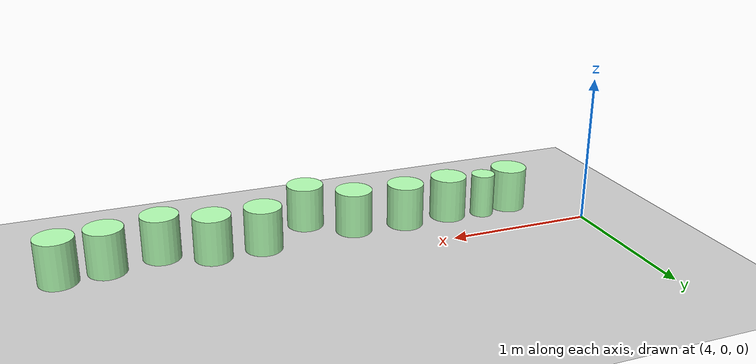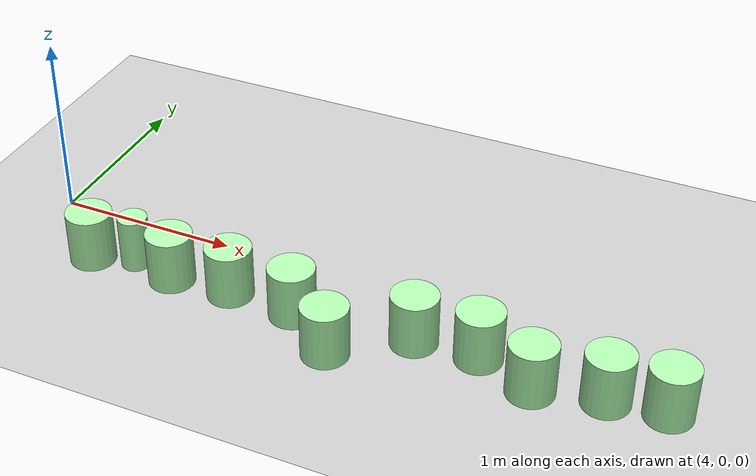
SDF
<sdf version="1.7">
 <world name="default">
  <model name="ground_plane">
   <static>1</static>
   <link name="link">
    <collision name="collision">
     <geometry><plane><normal>0 0 1</normal><size>100 100</size></plane></geometry>
     <surface><friction><ode><mu>100</mu><mu2>50</mu2></ode></friction></surface>
    </collision>
    <visual name="visual">
     <cast_shadows>0</cast_shadows>
     <geometry><plane><normal>0 0 1</normal><size>100 100</size></plane></geometry>
     <material>
      <script><uri>file://media/materials/scripts/gazebo.material</uri><name>Gazebo/Grey</name></script>
     </material>
    </visual>
   </link>
  </model>
  <model name="mhz_y_25_30_clone_13">
   <link name="link">
    <inertial>
     <mass>1</mass>
     <inertia><ixx>0.145833</ixx><ixy>0</ixy><ixz>0</ixz><iyy>0.145833</iyy><iyz>0</iyz><izz>0.125</izz></inertia>
    </inertial>
    <visual name="visual">
     <geometry><cylinder><radius>0.125</radius><length>0.3</length></cylinder></geometry>
     <material>
      <script><name>Gazebo/Grey</name><uri>file://media/materials/scripts/gazebo.material</uri></script>
      <shader type="pixel"><normal_map>__default__</normal_map></shader>
      <ambient>0 1 0 0</ambient>
      <diffuse>0.7 1 0.7 1</diffuse>
      <specular>0.01 0.01 0.01 1</specular>
      <emissive>0 0 0 1</emissive>
     </material>
    </visual>
    <collision name="collision">
     <geometry><cylinder><radius>0.125</radius><length>0.3</length></cylinder></geometry>
     <surface>
      <friction>
       <ode><mu>1</mu><mu2>1</mu2><fdir1>0 0 0</fdir1><slip1>0</slip1><slip2>0</slip2></ode>
       <torsional>
        <coefficient>1</coefficient>
        <patch_radius>0</patch_radius>
        <surface_radius>0</surface_radius>
        <use_patch_radius>1</use_patch_radius>
        <ode><slip>0</slip></ode>
       </torsional>
      </friction>
      <bounce><restitution_coefficient>0</restitution_coefficient><threshold>1e+06</threshold></bounce>
      <contact>
       <collide_without_contact>0</collide_without_contact>
       <collide_without_contact_bitmask>1</collide_without_contact_bitmask>
       <collide_bitmask>1</collide_bitmask>
       <ode>
        <soft_cfm>0</soft_cfm>
        <soft_erp>0.2</soft_erp>
        <kp>1e+13</kp>
        <kd>1</kd>
        <max_vel>0.01</max_vel>
        <min_depth>0</min_depth>
       </ode>
       <bullet>
        <split_impulse>1</split_impulse>
        <split_impulse_penetration_threshold>-0.01</split_impulse_penetration_threshold>
        <soft_cfm>0</soft_cfm>
        <soft_erp>0.2</soft_erp>
        <kp>1e+13</kp>
        <kd>1</kd>
       </bullet>
      </contact>
     </surface>
    </collision>
   </link>
   <static>1</static>
   <pose>4.39388 -0.378997 0.14679 0 -0 0</pose>
  </model>
  <model name="mhz_y_25_30_clone_13_clone_1">
   <link name="link">
    <inertial>
     <mass>1</mass>
     <inertia><ixx>0.145833</ixx><ixy>0</ixy><ixz>0</ixz><iyy>0.145833</iyy><iyz>0</iyz><izz>0.125</izz></inertia>
    </inertial>
    <visual name="visual">
     <geometry><cylinder><radius>0.125</radius><length>0.3</length></cylinder></geometry>
     <material>
      <script><name>Gazebo/Grey</name><uri>file://media/materials/scripts/gazebo.material</uri></script>
      <shader type="pixel"><normal_map>__default__</normal_map></shader>
      <ambient>0 1 0 0</ambient>
      <diffuse>0.7 1 0.7 1</diffuse>
      <specular>0.01 0.01 0.01 1</specular>
      <emissive>0 0 0 1</emissive>
     </material>
    </visual>
    <collision name="collision">
     <geometry><cylinder><radius>0.125</radius><length>0.3</length></cylinder></geometry>
     <surface>
      <friction>
       <ode><mu>1</mu><mu2>1</mu2><fdir1>0 0 0</fdir1><slip1>0</slip1><slip2>0</slip2></ode>
       <torsional>
        <coefficient>1</coefficient>
        <patch_radius>0</patch_radius>
        <surface_radius>0</surface_radius>
        <use_patch_radius>1</use_patch_radius>
        <ode><slip>0</slip></ode>
       </torsional>
      </friction>
      <bounce><restitution_coefficient>0</restitution_coefficient><threshold>1e+06</threshold></bounce>
      <contact>
       <collide_without_contact>0</collide_without_contact>
       <collide_without_contact_bitmask>1</collide_without_contact_bitmask>
       <collide_bitmask>1</collide_bitmask>
       <ode>
        <soft_cfm>0</soft_cfm>
        <soft_erp>0.2</soft_erp>
        <kp>1e+13</kp>
        <kd>1</kd>
        <max_vel>0.01</max_vel>
        <min_depth>0</min_depth>
       </ode>
       <bullet>
        <split_impulse>1</split_impulse>
        <split_impulse_penetration_threshold>-0.01</split_impulse_penetration_threshold>
        <soft_cfm>0</soft_cfm>
        <soft_erp>0.2</soft_erp>
        <kp>1e+13</kp>
        <kd>1</kd>
       </bullet>
      </contact>
     </surface>
    </collision>
   </link>
   <static>1</static>
   <pose>4.87552 -0.370789 0.14679 0 -0 0</pose>
  </model>
  <model name="mhz_y_25_30_clone_13_clone_6">
   <link name="link">
    <inertial>
     <mass>1</mass>
     <inertia><ixx>0.145833</ixx><ixy>0</ixy><ixz>0</ixz><iyy>0.145833</iyy><iyz>0</iyz><izz>0.125</izz></inertia>
    </inertial>
    <visual name="visual">
     <geometry><cylinder><radius>0.125</radius><length>0.3</length></cylinder></geometry>
     <material>
      <script><name>Gazebo/Grey</name><uri>file://media/materials/scripts/gazebo.material</uri></script>
      <shader type="pixel"><normal_map>__default__</normal_map></shader>
      <ambient>0 1 0 0</ambient>
      <diffuse>0.7 1 0.7 1</diffuse>
      <specular>0.01 0.01 0.01 1</specular>
      <emissive>0 0 0 1</emissive>
     </material>
    </visual>
    <collision name="collision">
     <geometry><cylinder><radius>0.125</radius><length>0.3</length></cylinder></geometry>
     <surface>
      <friction>
       <ode><mu>1</mu><mu2>1</mu2><fdir1>0 0 0</fdir1><slip1>0</slip1><slip2>0</slip2></ode>
       <torsional>
        <coefficient>1</coefficient>
        <patch_radius>0</patch_radius>
        <surface_radius>0</surface_radius>
        <use_patch_radius>1</use_patch_radius>
        <ode><slip>0</slip></ode>
       </torsional>
      </friction>
      <bounce><restitution_coefficient>0</restitution_coefficient><threshold>1e+06</threshold></bounce>
      <contact>
       <collide_without_contact>0</collide_without_contact>
       <collide_without_contact_bitmask>1</collide_without_contact_bitmask>
       <collide_bitmask>1</collide_bitmask>
       <ode>
        <soft_cfm>0</soft_cfm>
        <soft_erp>0.2</soft_erp>
        <kp>1e+13</kp>
        <kd>1</kd>
        <max_vel>0.01</max_vel>
        <min_depth>0</min_depth>
       </ode>
       <bullet>
        <split_impulse>1</split_impulse>
        <split_impulse_penetration_threshold>-0.01</split_impulse_penetration_threshold>
        <soft_cfm>0</soft_cfm>
        <soft_erp>0.2</soft_erp>
        <kp>1e+13</kp>
        <kd>1</kd>
       </bullet>
      </contact>
     </surface>
    </collision>
   </link>
   <static>1</static>
   <pose>5.21197 -0.349892 0.14679 0 -0 0</pose>
  </model>
  <model name="mhz_y_25_30_clone_13_clone_14">
   <link name="link">
    <inertial>
     <mass>1</mass>
     <inertia><ixx>0.145833</ixx><ixy>0</ixy><ixz>0</ixz><iyy>0.145833</iyy><iyz>0</iyz><izz>0.125</izz></inertia>
    </inertial>
    <visual name="visual">
     <geometry><cylinder><radius>0.125</radius><length>0.3</length></cylinder></geometry>
     <material>
      <script><name>Gazebo/Grey</name><uri>file://media/materials/scripts/gazebo.material</uri></script>
      <shader type="pixel"><normal_map>__default__</normal_map></shader>
      <ambient>0 1 0 0</ambient>
      <diffuse>0.7 1 0.7 1</diffuse>
      <specular>0.01 0.01 0.01 1</specular>
      <emissive>0 0 0 1</emissive>
     </material>
    </visual>
    <collision name="collision">
     <geometry><cylinder><radius>0.125</radius><length>0.3</length></cylinder></geometry>
     <surface>
      <friction>
       <ode><mu>1</mu><mu2>1</mu2><fdir1>0 0 0</fdir1><slip1>0</slip1><slip2>0</slip2></ode>
       <torsional>
        <coefficient>1</coefficient>
        <patch_radius>0</patch_radius>
        <surface_radius>0</surface_radius>
        <use_patch_radius>1</use_patch_radius>
        <ode><slip>0</slip></ode>
       </torsional>
      </friction>
      <bounce><restitution_coefficient>0</restitution_coefficient><threshold>1e+06</threshold></bounce>
      <contact>
       <collide_without_contact>0</collide_without_contact>
       <collide_without_contact_bitmask>1</collide_without_contact_bitmask>
       <collide_bitmask>1</collide_bitmask>
       <ode>
        <soft_cfm>0</soft_cfm>
        <soft_erp>0.2</soft_erp>
        <kp>1e+13</kp>
        <kd>1</kd>
        <max_vel>0.01</max_vel>
        <min_depth>0</min_depth>
       </ode>
       <bullet>
        <split_impulse>1</split_impulse>
        <split_impulse_penetration_threshold>-0.01</split_impulse_penetration_threshold>
        <soft_cfm>0</soft_cfm>
        <soft_erp>0.2</soft_erp>
        <kp>1e+13</kp>
        <kd>1</kd>
       </bullet>
      </contact>
     </surface>
    </collision>
   </link>
   <static>1</static>
   <pose>5.58179 -0.370522 0.14679 0 -0 0</pose>
  </model>
  <model name="mhz_y_25_30_clone_13_clone_21">
   <link name="link">
    <inertial>
     <mass>1</mass>
     <inertia><ixx>0.145833</ixx><ixy>0</ixy><ixz>0</ixz><iyy>0.145833</iyy><iyz>0</iyz><izz>0.125</izz></inertia>
    </inertial>
    <visual name="visual">
     <geometry><cylinder><radius>0.125</radius><length>0.3</length></cylinder></geometry>
     <material>
      <script><name>Gazebo/Grey</name><uri>file://media/materials/scripts/gazebo.material</uri></script>
      <shader type="pixel"><normal_map>__default__</normal_map></shader>
      <ambient>0 1 0 0</ambient>
      <diffuse>0.7 1 0.7 1</diffuse>
      <specular>0.01 0.01 0.01 1</specular>
      <emissive>0 0 0 1</emissive>
     </material>
    </visual>
    <collision name="collision">
     <geometry><cylinder><radius>0.125</radius><length>0.3</length></cylinder></geometry>
     <surface>
      <friction>
       <ode><mu>1</mu><mu2>1</mu2><fdir1>0 0 0</fdir1><slip1>0</slip1><slip2>0</slip2></ode>
       <torsional>
        <coefficient>1</coefficient>
        <patch_radius>0</patch_radius>
        <surface_radius>0</surface_radius>
        <use_patch_radius>1</use_patch_radius>
        <ode><slip>0</slip></ode>
       </torsional>
      </friction>
      <bounce><restitution_coefficient>0</restitution_coefficient><threshold>1e+06</threshold></bounce>
      <contact>
       <collide_without_contact>0</collide_without_contact>
       <collide_without_contact_bitmask>1</collide_without_contact_bitmask>
       <collide_bitmask>1</collide_bitmask>
       <ode>
        <soft_cfm>0</soft_cfm>
        <soft_erp>0.2</soft_erp>
        <kp>1e+13</kp>
        <kd>1</kd>
        <max_vel>0.01</max_vel>
        <min_depth>0</min_depth>
       </ode>
       <bullet>
        <split_impulse>1</split_impulse>
        <split_impulse_penetration_threshold>-0.01</split_impulse_penetration_threshold>
        <soft_cfm>0</soft_cfm>
        <soft_erp>0.2</soft_erp>
        <kp>1e+13</kp>
        <kd>1</kd>
       </bullet>
      </contact>
     </surface>
    </collision>
   </link>
   <static>1</static>
   <pose>5.86353 -0.575973 0.14679 0 -0 0</pose>
  </model>
  <model name="mhz_y_25_30_clone_13_clone_22">
   <link name="link">
    <inertial>
     <mass>1</mass>
     <inertia><ixx>0.145833</ixx><ixy>0</ixy><ixz>0</ixz><iyy>0.145833</iyy><iyz>0</iyz><izz>0.125</izz></inertia>
    </inertial>
    <visual name="visual">
     <geometry><cylinder><radius>0.125</radius><length>0.3</length></cylinder></geometry>
     <material>
      <script><name>Gazebo/Grey</name><uri>file://media/materials/scripts/gazebo.material</uri></script>
      <shader type="pixel"><normal_map>__default__</normal_map></shader>
      <ambient>0 1 0 0</ambient>
      <diffuse>0.7 1 0.7 1</diffuse>
      <specular>0.01 0.01 0.01 1</specular>
      <emissive>0 0 0 1</emissive>
     </material>
    </visual>
    <collision name="collision">
     <geometry><cylinder><radius>0.125</radius><length>0.3</length></cylinder></geometry>
     <surface>
      <friction>
       <ode><mu>1</mu><mu2>1</mu2><fdir1>0 0 0</fdir1><slip1>0</slip1><slip2>0</slip2></ode>
       <torsional>
        <coefficient>1</coefficient>
        <patch_radius>0</patch_radius>
        <surface_radius>0</surface_radius>
        <use_patch_radius>1</use_patch_radius>
        <ode><slip>0</slip></ode>
       </torsional>
      </friction>
      <bounce><restitution_coefficient>0</restitution_coefficient><threshold>1e+06</threshold></bounce>
      <contact>
       <collide_without_contact>0</collide_without_contact>
       <collide_without_contact_bitmask>1</collide_without_contact_bitmask>
       <collide_bitmask>1</collide_bitmask>
       <ode>
        <soft_cfm>0</soft_cfm>
        <soft_erp>0.2</soft_erp>
        <kp>1e+13</kp>
        <kd>1</kd>
        <max_vel>0.01</max_vel>
        <min_depth>0</min_depth>
       </ode>
       <bullet>
        <split_impulse>1</split_impulse>
        <split_impulse_penetration_threshold>-0.01</split_impulse_penetration_threshold>
        <soft_cfm>0</soft_cfm>
        <soft_erp>0.2</soft_erp>
        <kp>1e+13</kp>
        <kd>1</kd>
       </bullet>
      </contact>
     </surface>
    </collision>
   </link>
   <static>1</static>
   <pose>6.22839 -0.316858 0.14679 0 -0 0</pose>
  </model>
  <model name="mhz_y_25_30_clone_13_clone_26">
   <link name="link">
    <inertial>
     <mass>1</mass>
     <inertia><ixx>0.145833</ixx><ixy>0</ixy><ixz>0</ixz><iyy>0.145833</iyy><iyz>0</iyz><izz>0.125</izz></inertia>
    </inertial>
    <visual name="visual">
     <geometry><cylinder><radius>0.125</radius><length>0.3</length></cylinder></geometry>
     <material>
      <script><name>Gazebo/Grey</name><uri>file://media/materials/scripts/gazebo.material</uri></script>
      <shader type="pixel"><normal_map>__default__</normal_map></shader>
      <ambient>0 1 0 0</ambient>
      <diffuse>0.7 1 0.7 1</diffuse>
      <specular>0.01 0.01 0.01 1</specular>
      <emissive>0 0 0 1</emissive>
     </material>
    </visual>
    <collision name="collision">
     <geometry><cylinder><radius>0.125</radius><length>0.3</length></cylinder></geometry>
     <surface>
      <friction>
       <ode><mu>1</mu><mu2>1</mu2><fdir1>0 0 0</fdir1><slip1>0</slip1><slip2>0</slip2></ode>
       <torsional>
        <coefficient>1</coefficient>
        <patch_radius>0</patch_radius>
        <surface_radius>0</surface_radius>
        <use_patch_radius>1</use_patch_radius>
        <ode><slip>0</slip></ode>
       </torsional>
      </friction>
      <bounce><restitution_coefficient>0</restitution_coefficient><threshold>1e+06</threshold></bounce>
      <contact>
       <collide_without_contact>0</collide_without_contact>
       <collide_without_contact_bitmask>1</collide_without_contact_bitmask>
       <collide_bitmask>1</collide_bitmask>
       <ode>
        <soft_cfm>0</soft_cfm>
        <soft_erp>0.2</soft_erp>
        <kp>1e+13</kp>
        <kd>1</kd>
        <max_vel>0.01</max_vel>
        <min_depth>0</min_depth>
       </ode>
       <bullet>
        <split_impulse>1</split_impulse>
        <split_impulse_penetration_threshold>-0.01</split_impulse_penetration_threshold>
        <soft_cfm>0</soft_cfm>
        <soft_erp>0.2</soft_erp>
        <kp>1e+13</kp>
        <kd>1</kd>
       </bullet>
      </contact>
     </surface>
    </collision>
   </link>
   <static>1</static>
   <pose>6.56516 -0.301337 0.14679 0 -0 0</pose>
  </model>
  <model name="mhz_y_25_30_clone_13_clone_33">
   <link name="link">
    <inertial>
     <mass>1</mass>
     <inertia><ixx>0.145833</ixx><ixy>0</ixy><ixz>0</ixz><iyy>0.145833</iyy><iyz>0</iyz><izz>0.125</izz></inertia>
    </inertial>
    <visual name="visual">
     <geometry><cylinder><radius>0.125</radius><length>0.3</length></cylinder></geometry>
     <material>
      <script><name>Gazebo/Grey</name><uri>file://media/materials/scripts/gazebo.material</uri></script>
      <shader type="pixel"><normal_map>__default__</normal_map></shader>
      <ambient>0 1 0 0</ambient>
      <diffuse>0.7 1 0.7 1</diffuse>
      <specular>0.01 0.01 0.01 1</specular>
      <emissive>0 0 0 1</emissive>
     </material>
    </visual>
    <collision name="collision">
     <geometry><cylinder><radius>0.125</radius><length>0.3</length></cylinder></geometry>
     <surface>
      <friction>
       <ode><mu>1</mu><mu2>1</mu2><fdir1>0 0 0</fdir1><slip1>0</slip1><slip2>0</slip2></ode>
       <torsional>
        <coefficient>1</coefficient>
        <patch_radius>0</patch_radius>
        <surface_radius>0</surface_radius>
        <use_patch_radius>1</use_patch_radius>
        <ode><slip>0</slip></ode>
       </torsional>
      </friction>
      <bounce><restitution_coefficient>0</restitution_coefficient><threshold>1e+06</threshold></bounce>
      <contact>
       <collide_without_contact>0</collide_without_contact>
       <collide_without_contact_bitmask>1</collide_without_contact_bitmask>
       <collide_bitmask>1</collide_bitmask>
       <ode>
        <soft_cfm>0</soft_cfm>
        <soft_erp>0.2</soft_erp>
        <kp>1e+13</kp>
        <kd>1</kd>
        <max_vel>0.01</max_vel>
        <min_depth>0</min_depth>
       </ode>
       <bullet>
        <split_impulse>1</split_impulse>
        <split_impulse_penetration_threshold>-0.01</split_impulse_penetration_threshold>
        <soft_cfm>0</soft_cfm>
        <soft_erp>0.2</soft_erp>
        <kp>1e+13</kp>
        <kd>1</kd>
       </bullet>
      </contact>
     </surface>
    </collision>
   </link>
   <static>1</static>
   <pose>6.87335 -0.423949 0.14679 0 -0 0</pose>
  </model>
  <model name="mhz_y_25_30_clone_13_clone_39">
   <link name="link">
    <inertial>
     <mass>1</mass>
     <inertia><ixx>0.145833</ixx><ixy>0</ixy><ixz>0</ixz><iyy>0.145833</iyy><iyz>0</iyz><izz>0.125</izz></inertia>
    </inertial>
    <visual name="visual">
     <geometry><cylinder><radius>0.125</radius><length>0.3</length></cylinder></geometry>
     <material>
      <script><name>Gazebo/Grey</name><uri>file://media/materials/scripts/gazebo.material</uri></script>
      <shader type="pixel"><normal_map>__default__</normal_map></shader>
      <ambient>0 1 0 0</ambient>
      <diffuse>0.7 1 0.7 1</diffuse>
      <specular>0.01 0.01 0.01 1</specular>
      <emissive>0 0 0 1</emissive>
     </material>
    </visual>
    <collision name="collision">
     <geometry><cylinder><radius>0.125</radius><length>0.3</length></cylinder></geometry>
     <surface>
      <friction>
       <ode><mu>1</mu><mu2>1</mu2><fdir1>0 0 0</fdir1><slip1>0</slip1><slip2>0</slip2></ode>
       <torsional>
        <coefficient>1</coefficient>
        <patch_radius>0</patch_radius>
        <surface_radius>0</surface_radius>
        <use_patch_radius>1</use_patch_radius>
        <ode><slip>0</slip></ode>
       </torsional>
      </friction>
      <bounce><restitution_coefficient>0</restitution_coefficient><threshold>1e+06</threshold></bounce>
      <contact>
       <collide_without_contact>0</collide_without_contact>
       <collide_without_contact_bitmask>1</collide_without_contact_bitmask>
       <collide_bitmask>1</collide_bitmask>
       <ode>
        <soft_cfm>0</soft_cfm>
        <soft_erp>0.2</soft_erp>
        <kp>1e+13</kp>
        <kd>1</kd>
        <max_vel>0.01</max_vel>
        <min_depth>0</min_depth>
       </ode>
       <bullet>
        <split_impulse>1</split_impulse>
        <split_impulse_penetration_threshold>-0.01</split_impulse_penetration_threshold>
        <soft_cfm>0</soft_cfm>
        <soft_erp>0.2</soft_erp>
        <kp>1e+13</kp>
        <kd>1</kd>
       </bullet>
      </contact>
     </surface>
    </collision>
   </link>
   <static>1</static>
   <pose>7.51581 -0.31179 0.14679 0 -0 0</pose>
  </model>
  <model name="mhz_y_25_30_clone_13_clone_40">
   <link name="link">
    <inertial>
     <mass>1</mass>
     <inertia><ixx>0.145833</ixx><ixy>0</ixy><ixz>0</ixz><iyy>0.145833</iyy><iyz>0</iyz><izz>0.125</izz></inertia>
    </inertial>
    <visual name="visual">
     <geometry><cylinder><radius>0.125</radius><length>0.3</length></cylinder></geometry>
     <material>
      <script><name>Gazebo/Grey</name><uri>file://media/materials/scripts/gazebo.material</uri></script>
      <shader type="pixel"><normal_map>__default__</normal_map></shader>
      <ambient>0 1 0 0</ambient>
      <diffuse>0.7 1 0.7 1</diffuse>
      <specular>0.01 0.01 0.01 1</specular>
      <emissive>0 0 0 1</emissive>
     </material>
    </visual>
    <collision name="collision">
     <geometry><cylinder><radius>0.125</radius><length>0.3</length></cylinder></geometry>
     <surface>
      <friction>
       <ode><mu>1</mu><mu2>1</mu2><fdir1>0 0 0</fdir1><slip1>0</slip1><slip2>0</slip2></ode>
       <torsional>
        <coefficient>1</coefficient>
        <patch_radius>0</patch_radius>
        <surface_radius>0</surface_radius>
        <use_patch_radius>1</use_patch_radius>
        <ode><slip>0</slip></ode>
       </torsional>
      </friction>
      <bounce><restitution_coefficient>0</restitution_coefficient><threshold>1e+06</threshold></bounce>
      <contact>
       <collide_without_contact>0</collide_without_contact>
       <collide_without_contact_bitmask>1</collide_without_contact_bitmask>
       <collide_bitmask>1</collide_bitmask>
       <ode>
        <soft_cfm>0</soft_cfm>
        <soft_erp>0.2</soft_erp>
        <kp>1e+13</kp>
        <kd>1</kd>
        <max_vel>0.01</max_vel>
        <min_depth>0</min_depth>
       </ode>
       <bullet>
        <split_impulse>1</split_impulse>
        <split_impulse_penetration_threshold>-0.01</split_impulse_penetration_threshold>
        <soft_cfm>0</soft_cfm>
        <soft_erp>0.2</soft_erp>
        <kp>1e+13</kp>
        <kd>1</kd>
       </bullet>
      </contact>
     </surface>
    </collision>
   </link>
   <static>1</static>
   <pose>7.22222 -0.347177 0.14679 0 -0 0</pose>
  </model>
  <model name="mhz_y_25_30_clone_13_clone_2_clone_0">
   <link name="link">
    <inertial>
     <mass>1</mass>
     <inertia><ixx>0.145833</ixx><ixy>0</ixy><ixz>0</ixz><iyy>0.145833</iyy><iyz>0</iyz><izz>0.125</izz></inertia>
    </inertial>
    <visual name="visual">
     <geometry><cylinder><radius>0.0803495</radius><length>0.3</length></cylinder></geometry>
     <material>
      <script><name>Gazebo/Grey</name><uri>file://media/materials/scripts/gazebo.material</uri></script>
      <shader type="pixel"><normal_map>__default__</normal_map></shader>
      <ambient>0 1 0 0</ambient>
      <diffuse>0.7 1 0.7 1</diffuse>
      <specular>0.01 0.01 0.01 1</specular>
      <emissive>0 0 0 1</emissive>
     </material>
    </visual>
    <collision name="collision">
     <geometry><cylinder><radius>0.0803495</radius><length>0.3</length></cylinder></geometry>
     <surface>
      <friction>
       <ode><mu>1</mu><mu2>1</mu2><fdir1>0 0 0</fdir1><slip1>0</slip1><slip2>0</slip2></ode>
       <torsional>
        <coefficient>1</coefficient>
        <patch_radius>0</patch_radius>
        <surface_radius>0</surface_radius>
        <use_patch_radius>1</use_patch_radius>
        <ode><slip>0</slip></ode>
       </torsional>
      </friction>
      <bounce><restitution_coefficient>0</restitution_coefficient><threshold>1e+06</threshold></bounce>
      <contact>
       <collide_without_contact>0</collide_without_contact>
       <collide_without_contact_bitmask>1</collide_without_contact_bitmask>
       <collide_bitmask>1</collide_bitmask>
       <ode>
        <soft_cfm>0</soft_cfm>
        <soft_erp>0.2</soft_erp>
        <kp>1e+13</kp>
        <kd>1</kd>
        <max_vel>0.01</max_vel>
        <min_depth>0</min_depth>
       </ode>
       <bullet>
        <split_impulse>1</split_impulse>
        <split_impulse_penetration_threshold>-0.01</split_impulse_penetration_threshold>
        <soft_cfm>0</soft_cfm>
        <soft_erp>0.2</soft_erp>
        <kp>1e+13</kp>
        <kd>1</kd>
       </bullet>
      </contact>
     </surface>
    </collision>
   </link>
   <static>1</static>
   <pose>4.62754 -0.324022 0.14679 0 -0 0</pose>
  </model>
 </world>
</sdf>
